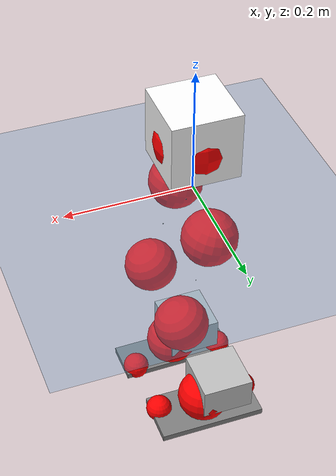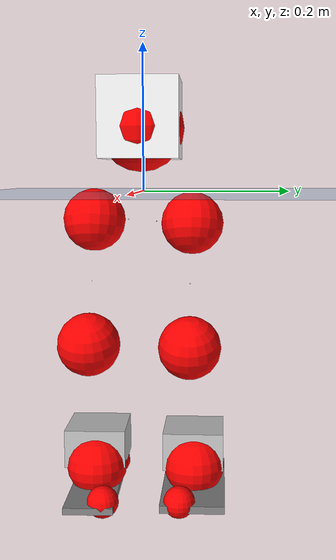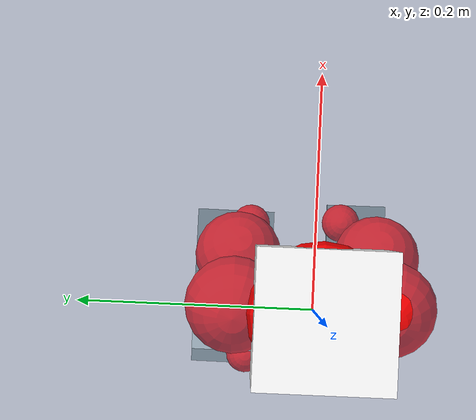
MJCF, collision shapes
<mujoco model="pi_12dof_release_v1">
  <compiler angle="radian" assetdir="assets" balanceinertia="true" inertiafromgeom="false"/>

  <option timestep="0.005" density="1.2" viscosity="2e-05"/>

  <size nkey="1"/>

  <visual>
    <quality shadowsize="8192"/>
    <map shadowclip="0.5"/>
  </visual>

  <default>
    <default class="/">
      <joint armature="0.01" damping="0.01" frictionloss="0.01"/>
      <geom contype="0" conaffinity="0" group="1" solref="-1000 -80"/>
      <site size="0.01 0.005 0.005" group="5"/>
      <general forcelimited="true" biastype="affine" gainprm="20" biasprm="0 -20 -0.5"/>
      <default class="foot">
        <geom size="0.0845 0.036 0.005" type="box" condim="6" group="4" priority="1" friction="0.9 0.2 0.2" solimp="0.015 1 0.005"/>
      </default>
      <default class="reward_collision_sphere">
        <geom group="5" rgba="1 0 0 1"/>
      </default>
    </default>
  </default>

  <asset>
    <texture type="skybox" colorspace="auto" name="//unnamed_texture_0" builtin="gradient" rgb1="0.95 0.95 0.95" rgb2="0.95 0.95 0.95" width="100" height="600"/>
    <texture type="2d" colorspace="auto" name="texplane" builtin="checker" rgb1="0.345 0.575 0.748" rgb2="0.345 0.575 0.748" markrgb="1 1 1" width="512" height="512"/>
    <material name="MatPlane" class="/" texture="texplane" texuniform="true" texrepeat="2 2" specular="0.9"/>
    <mesh name="baselink_1" class="/" file="baselink_1.STL"/>
    <mesh name="r_hip_pitch_link" class="/" file="r_hip_pitch_link.STL"/>
    <mesh name="r_hip_roll_link" class="/" file="r_hip_roll_link.STL"/>
    <mesh name="r_thigh_link" class="/" file="r_thigh_link.STL"/>
    <mesh name="r_calf_link" class="/" file="r_calf_link.STL"/>
    <mesh name="r_ankle_pitch_link" class="/" file="r_ankle_pitch_link.STL"/>
    <mesh name="r_ankle_roll_link" class="/" file="r_ankle_roll_link.STL"/>
    <mesh name="l_hip_pitch_link" class="/" file="l_hip_pitch_link.STL"/>
    <mesh name="l_hip_roll_link" class="/" file="l_hip_roll_link.STL"/>
    <mesh name="l_thigh_link" class="/" file="l_thigh_link.STL"/>
    <mesh name="l_calf_link" class="/" file="l_calf_link.STL"/>
    <mesh name="l_ankle_pitch_link" class="/" file="l_ankle_pitch_link.STL"/>
    <mesh name="l_ankle_roll_link" class="/" file="l_ankle_roll_link.STL"/>
  </asset>

  <worldbody>
    <geom name="floor" class="/" size="100 100 0.125" type="plane" group="0" material="MatPlane"/>
    <light name="toplight_shadow" class="/" pos="0 0 5" dir="0.0990148 0.0990148 -0.990148" type="directional" ambient="0.04 0.04 0.04" diffuse="0.55 0.55 0.55" specular="0.12 0.12 0.12"/>
    <light name="toplight_fill" class="/" pos="0 0 5" dir="0.0990148 0.0990148 -0.990148" type="directional" castshadow="false" ambient="0.04 0.04 0.04" diffuse="0.3 0.3 0.3" specular="0.08 0.08 0.08"/>
    <body name="trunk" pos="0.00017831 -0.00275763 -0.000563436" quat="1 4.39855e-05 -2.733e-05 1.81011e-06">
      <inertial pos="0.0026511 -0.00316792 0.0496499" quat="0.689529 0.00682399 0.0146797 0.724077" mass="2.66451" diaginertia="0.0167631 0.00475533 0.0117142"/>
      <joint name="//unnamed_joint_0" type="free"/>
      <geom name="//unnamed_geom_1" class="/" type="mesh" density="0" rgba="1 1 1 1" mesh="baselink_1"/>
      <geom name="//unnamed_geom_2" class="/" size="0.0539063 0.0539063 0.0539063" pos="0 0 0.0984825" type="box" rgba="1 1 1 1"/>
      <geom name="//unnamed_geom_3" class="reward_collision_sphere" size="0.059297" pos="0 0 0.0861722"/>
      <site name="imu" class="/" pos="0.013562 0.00970536 -0.0137736" size="0.0107813"/>
      <camera name="track" class="/" pos="0 -1.76826 0" quat="0.707107 0.707107 0 0" mode="trackcom"/>
      <camera name="ego_camera" class="/" pos="0.0839414 0 0.221586" quat="-0.5 -0.5 0.5 0.5"/>
      <body name="r_hip_pitch_link" pos="0.00182031 -0.0181912 -0.0382257" quat="0.992252 0.00020014 -0.124232 0.00123422">
        <inertial pos="0.00161821 -0.0493877 0.00198084" quat="-0.017369 0.707022 -0.0251864 0.706529" mass="0.444777" diaginertia="0.000190358 5.04756e-05 0.000234701"/>
        <joint name="r_hip_pitch_joint" class="/" pos="0 0 0" axis="0.00238068 -0.999997 0.000993396" range="-1.75358 1.21155" armature="0.0110568" damping="0.0131082" frictionloss="0.0111597"/>
        <geom name="//unnamed_geom_4" class="/" type="mesh" density="0" rgba="0.75294 0.75294 0.75294 1" mesh="r_hip_pitch_link"/>
        <geom name="//unnamed_geom_5" class="/" size="0.000539063 0.000539063 0.000539063" type="box" rgba="0.75294 0.75294 0.75294 1"/>
        <body name="r_hip_roll_link" pos="-0.00149672 -0.0476474 -0.000651078" quat="0.999999 0.000553917 0.00018521 0.00122008">
          <inertial pos="0.00133117 0.00210162 -0.0760856" quat="0.705171 -0.0654107 -0.0822433 0.701207" mass="0.486079" diaginertia="0.000582932 0.000150548 0.000364685"/>
          <joint name="r_hip_roll_joint" class="/" pos="0 0 0" axis="-0.999934 -0.00862624 0.00759993" range="-0.130446 0.552908" armature="0.00937268" damping="0.015155" frictionloss="0.0108652"/>
          <geom name="//unnamed_geom_6" class="/" type="mesh" density="0" rgba="0.75294 0.75294 0.75294 1" mesh="r_hip_roll_link"/>
          <geom name="//unnamed_geom_7" class="/" size="0.000539063 0.000539063 0.000539063" type="box" rgba="0.75294 0.75294 0.75294 1"/>
          <geom name="//unnamed_geom_8" class="reward_collision_sphere" size="0.0431251"/>
          <body name="r_thigh_link" pos="-0.00122057 -0.00220969 -0.0856614" quat="0.999999 -0.000507674 -2.17302e-05 0.000887192">
            <inertial pos="0.00298764 0.000861998 -0.0607294" quat="0.736858 0.676047 -0.000350664 0.000829969" mass="0.142719" diaginertia="0.000211704 5.26869e-05 0.000158553"/>
            <joint name="r_thigh_joint" class="/" pos="0 0 0" axis="0.00192889 0.00232687 -0.999995" range="-0.352777 0.591959" armature="0.0103083" damping="0.00374133" frictionloss="0.0109712"/>
            <geom name="//unnamed_geom_9" class="/" type="mesh" density="0" rgba="0.75294 0.75294 0.75294 1" mesh="r_thigh_link"/>
            <geom name="//unnamed_geom_10" class="/" size="0.000539063 0.000539063 0.000539063" type="box" rgba="0.75294 0.75294 0.75294 1"/>
            <body name="r_calf_link" pos="-0.00127023 -0.00243388 -0.0872166" quat="0.947608 -6.91489e-06 0.319436 -3.71232e-05">
              <inertial pos="-0.0011771 -0.00159834 -0.086702" quat="0.999985 -0.00299341 -3.96668e-06 0.00463432" mass="0.978542" diaginertia="0.00616188 0.00183222 0.000507649"/>
              <joint name="r_calf_joint" class="/" pos="0 0 0" axis="-0.00845945 -0.999957 -0.00392374" range="-1.61011 0.68165" armature="0.0111321" damping="0.00790488" frictionloss="0.011584"/>
              <geom name="//unnamed_geom_11" class="/" type="mesh" density="0" rgba="0.75294 0.75294 0.75294 1" mesh="r_calf_link"/>
              <geom name="//unnamed_geom_12" class="/" size="0.000539063 0.000539063 0.000539063" type="box" rgba="0.75294 0.75294 0.75294 1"/>
              <geom name="//unnamed_geom_13" class="reward_collision_sphere" size="0.0431251"/>
              <body name="r_ankle_pitch_link" pos="0.00317534 0.00239041 -0.170215" quat="0.980104 -0.000146978 -0.198483 0.000485786">
                <inertial pos="0.00374371 0.00099682 0.000257966" quat="0.00490619 0.706066 -0.0124817 0.708019" mass="0.235608" diaginertia="0.000556398 0.000123958 0.00034816"/>
                <joint name="r_ankle_pitch_joint" class="/" pos="0 0 0" axis="0.00177264 -0.999912 -0.0131288" range="-1.26935 0.552681" armature="0.0108246" damping="0.0209915" frictionloss="0.0105703"/>
                <geom name="//unnamed_geom_14" class="/" type="mesh" density="0" rgba="0.75294 0.75294 0.75294 1" mesh="r_ankle_pitch_link"/>
                <geom name="//unnamed_geom_15" class="/" size="0.0420469 0.0431251 0.0269532" type="box" rgba="0.75294 0.75294 0.75294 1"/>
                <body name="r_ankle_roll_link" pos="0.0831731 0.00146859 -0.00200931" quat="0.999999 0.00040637 0.00133895 -7.07279e-05">
                  <inertial pos="-0.0258921 0.000414969 -0.0153754" quat="0.562774 0.420959 0.434359 0.563392" mass="0.644581" diaginertia="0.00196216 0.000553861 0.000798449"/>
                  <joint name="r_ankle_roll_joint" class="/" pos="0 0 0" axis="-0.999999 0.000254173 -0.00120785" range="-0.197367 0.158632" armature="0.0106868" damping="0.00746854" frictionloss="0.00991922"/>
                  <geom name="//unnamed_geom_16" class="/" type="mesh" density="0" rgba="0.75294 0.75294 0.75294 1" mesh="r_ankle_roll_link"/>
                  <geom name="//unnamed_geom_17" class="/" type="mesh" rgba="0.75294 0.75294 0.75294 1" mesh="r_ankle_roll_link"/>
                  <geom name="right_foot" class="foot" size="0.0945711 0.033557 0.00474062" pos="-0.0570802 0 -0.0541654"/>
                  <geom name="//unnamed_geom_19" class="reward_collision_sphere" size="0.0431251" pos="-0.0559609 0 -0.0246206"/>
                  <geom name="//unnamed_geom_20" class="reward_collision_sphere" size="0.0215625" pos="0.0167883 0.0176826 -0.0492413"/>
                  <geom name="//unnamed_geom_21" class="reward_collision_sphere" size="0.0215625" pos="-0.134306 0.0176826 -0.0492413"/>
                  <site name="right_foot" class="foot" pos="-0.0570802 0 -0.0541654" size="0.0107813"/>
                </body>
              </body>
            </body>
          </body>
        </body>
      </body>
      <body name="l_hip_pitch_link" pos="0.000362173 0.0205491 -0.0409523" quat="0.992191 1.20577e-05 -0.12473 -1.07026e-05">
        <inertial pos="0.00154854 0.0449765 0.00119505" quat="-0.0388694 0.706695 0.0301137 0.705808" mass="0.491651" diaginertia="0.000226881 5.73789e-05 0.000287741"/>
        <joint name="l_hip_pitch_joint" class="/" pos="0 0 0" axis="-0.000318724 1 -0.000920212" stiffness="0.0103363" range="-1.25488 1.7471" armature="0.0106349" damping="0" frictionloss="0.0121094"/>
        <geom name="//unnamed_geom_22" class="/" type="mesh" density="0" rgba="0.75294 0.75294 0.75294 1" mesh="l_hip_pitch_link"/>
        <geom name="//unnamed_geom_23" class="/" size="0.000539063 0.000539063 0.000539063" type="box" rgba="0.75294 0.75294 0.75294 1"/>
        <body name="l_hip_roll_link" pos="-0.00193076 0.0497192 -0.00215982" quat="1 -5.3812e-05 9.95255e-05 -0.000174799">
          <inertial pos="-0.00299478 0.00059073 -0.07749" quat="0.692599 -0.0742305 -0.0750505 0.713557" mass="0.502297" diaginertia="0.000592586 0.000152374 0.000367876"/>
          <joint name="l_hip_roll_joint" class="/" pos="0 0 0" axis="-0.999925 -0.00201801 -0.0120496" stiffness="0.00158272" range="-0.552246 0.121276" armature="0.0122789" damping="0.00171972" frictionloss="0.0110174"/>
          <geom name="//unnamed_geom_24" class="/" type="mesh" density="0" rgba="0.75294 0.75294 0.75294 1" mesh="l_hip_roll_link"/>
          <geom name="//unnamed_geom_25" class="/" size="0.000539063 0.000539063 0.000539063" type="box" rgba="0.75294 0.75294 0.75294 1"/>
          <geom name="//unnamed_geom_26" class="reward_collision_sphere" size="0.0431251"/>
          <body name="l_thigh_link" pos="-0.00229993 -0.00240716 -0.0846645" quat="1 -0.000248827 -0.00015416 0.000138049">
            <inertial pos="4.64061e-05 -0.00115422 -0.057504" quat="0.675586 0.737281 0.00015255 -0.000241383" mass="0.149004" diaginertia="0.000233173 5.24751e-05 0.000168065"/>
            <joint name="l_thigh_joint" class="/" pos="0 0 0" axis="0.000212585 6.39163e-05 -1" range="-0.620096 0.294576" armature="0.0095137" damping="0.0110371" frictionloss="0.0108762"/>
            <geom name="//unnamed_geom_27" class="/" type="mesh" density="0" rgba="0.75294 0.75294 0.75294 1" mesh="l_thigh_link"/>
            <geom name="//unnamed_geom_28" class="/" size="0.000539063 0.000539063 0.000539063" type="box" rgba="0.75294 0.75294 0.75294 1"/>
            <body name="l_calf_link" pos="0.000588357 2.04614e-05 -0.0880506" quat="0.94761 1.46464e-05 0.319426 -0.00135372">
              <inertial pos="9.21985e-05 0.00564637 -0.0888372" quat="0.999994 0.000269985 -0.00164386 0.00317194" mass="1.04789" diaginertia="0.00655147 0.00194775 0.000522299"/>
              <joint name="l_calf_joint" class="/" pos="0 0 0" axis="0.00808435 0.999904 -0.0112304" range="-0.666862 1.64042" armature="0.0106344" damping="0.00554733" frictionloss="0.0108981"/>
              <geom name="//unnamed_geom_29" class="/" type="mesh" density="0" rgba="0.75294 0.75294 0.75294 1" mesh="l_calf_link"/>
              <geom name="//unnamed_geom_30" class="/" size="0.000539063 0.000539063 0.000539063" type="box" rgba="0.75294 0.75294 0.75294 1"/>
              <geom name="//unnamed_geom_31" class="reward_collision_sphere" size="0.0431251"/>
              <body name="l_ankle_pitch_link" pos="2.08802e-05 0.00394783 -0.172042" quat="0.980074 0.000255486 -0.19863 -0.00132753">
                <inertial pos="0.00530368 -0.00358706 0.00186622" quat="-0.00220879 0.706892 0.00674383 0.707286" mass="0.215138" diaginertia="0.000522793 0.000117316 0.000329831"/>
                <joint name="l_ankle_pitch_joint" class="/" pos="0 0 0" axis="0.00143479 0.99999 0.004117" range="-0.562544 1.35231" armature="0.0103661" damping="0.00431347" frictionloss="0.0107912"/>
                <geom name="//unnamed_geom_32" class="/" type="mesh" density="0" rgba="0.75294 0.75294 0.75294 1" mesh="l_ankle_pitch_link"/>
                <geom name="//unnamed_geom_33" class="/" size="0.0420469 0.0431251 0.0269532" type="box" rgba="0.75294 0.75294 0.75294 1"/>
                <body name="l_ankle_roll_link" pos="0.0824971 0.0011909 0.00165806" quat="1 0.000453221 0.000206251 -0.000482158">
                  <inertial pos="-0.0247334 -0.000244418 -0.017823" quat="0.561109 0.428944 0.435425 0.558183" mass="0.654632" diaginertia="0.00206497 0.00056226 0.000795287"/>
                  <joint name="l_ankle_roll_joint" class="/" pos="0 0 0" axis="-0.999937 0.0107146 0.00333174" range="-0.106057 0.0991095" armature="0.0121026" damping="0.0238712" frictionloss="0.00927426"/>
                  <geom name="//unnamed_geom_34" class="/" type="mesh" density="0" rgba="0.75294 0.75294 0.75294 1" mesh="l_ankle_roll_link"/>
                  <geom name="//unnamed_geom_35" class="/" type="mesh" rgba="0.75294 0.75294 0.75294 1" mesh="l_ankle_roll_link"/>
                  <geom name="left_foot" class="foot" size="0.088049 0.0439444 0.00526294" pos="-0.0570802 0 -0.0541654"/>
                  <geom name="//unnamed_geom_37" class="reward_collision_sphere" size="0.0431251" pos="-0.0559609 0 -0.0246206"/>
                  <geom name="//unnamed_geom_38" class="reward_collision_sphere" size="0.0215625" pos="0.0167883 -0.0176826 -0.0492413"/>
                  <geom name="//unnamed_geom_39" class="reward_collision_sphere" size="0.0215625" pos="-0.134306 -0.0176826 -0.0492413"/>
                  <site name="left_foot" class="foot" pos="-0.0570802 0 -0.0541654" size="0.0107813"/>
                </body>
              </body>
            </body>
          </body>
        </body>
      </body>
    </body>
  </worldbody>

  <contact>
    <pair class="/" geom1="floor" geom2="right_foot" name="//unnamed_contact_1"/>
    <pair class="/" geom1="floor" geom2="left_foot" name="//unnamed_contact_0"/>
  </contact>

  <actuator>
    <general name="r_hip_pitch_joint" class="/" joint="r_hip_pitch_joint" forcerange="-23.16 23.16" gainprm="20.4913" biasprm="0 -20.4913 -0.548319"/>
    <general name="r_hip_roll_joint" class="/" joint="r_hip_roll_joint" forcerange="-22.5555 22.5555" gainprm="20.4913" biasprm="0 -20.4913 -0.548319"/>
    <general name="r_thigh_joint" class="/" joint="r_thigh_joint" forcerange="-24.8347 24.8347" gainprm="20.4913" biasprm="0 -20.4913 -0.548319"/>
    <general name="r_calf_joint" class="/" joint="r_calf_joint" forcerange="-20.2753 20.2753" gainprm="20.4913" biasprm="0 -20.4913 -0.548319"/>
    <general name="r_ankle_pitch_joint" class="/" joint="r_ankle_pitch_joint" forcerange="-24.8385 24.8385" gainprm="20.4913" biasprm="0 -20.4913 -0.548319"/>
    <general name="r_ankle_roll_joint" class="/" joint="r_ankle_roll_joint" forcerange="-24.8367 24.8367" gainprm="20.4913" biasprm="0 -20.4913 -0.548319"/>
    <general name="l_hip_pitch_joint" class="/" joint="l_hip_pitch_joint" forcerange="-24.3972 24.3972" gainprm="20.4913" biasprm="0 -20.4913 -0.548319"/>
    <general name="l_hip_roll_joint" class="/" joint="l_hip_roll_joint" forcerange="-20.5658 20.5658" gainprm="20.4913" biasprm="0 -20.4913 -0.548319"/>
    <general name="l_thigh_joint" class="/" joint="l_thigh_joint" forcerange="-22.786 22.786" gainprm="20.4913" biasprm="0 -20.4913 -0.548319"/>
    <general name="l_calf_joint" class="/" joint="l_calf_joint" forcerange="-24.8176 24.8176" gainprm="20.4913" biasprm="0 -20.4913 -0.548319"/>
    <general name="l_ankle_pitch_joint" class="/" joint="l_ankle_pitch_joint" forcerange="-24.8166 24.8166" gainprm="20.4913" biasprm="0 -20.4913 -0.548319"/>
    <general name="l_ankle_roll_joint" class="/" joint="l_ankle_roll_joint" forcerange="-24.6789 24.6789" gainprm="20.4913" biasprm="0 -20.4913 -0.548319"/>
  </actuator>

  <sensor>
    <gyro site="imu" name="imu_angular_velocity"/>
    <velocimeter site="imu" name="imu_linear_velocity"/>
    <framelinvel objtype="site" objname="left_foot" name="left_foot_global_linear_velocity"/>
    <framelinvel objtype="site" objname="right_foot" name="right_foot_global_linear_velocity"/>
  </sensor>

  <keyframe>
    <key name="home" qpos="0 0 0.291 1 0 0 0 0.4 0 0 -0.8 0.4 0 -0.4 0 0 0.8 -0.4 0"/>
  </keyframe>
</mujoco>
